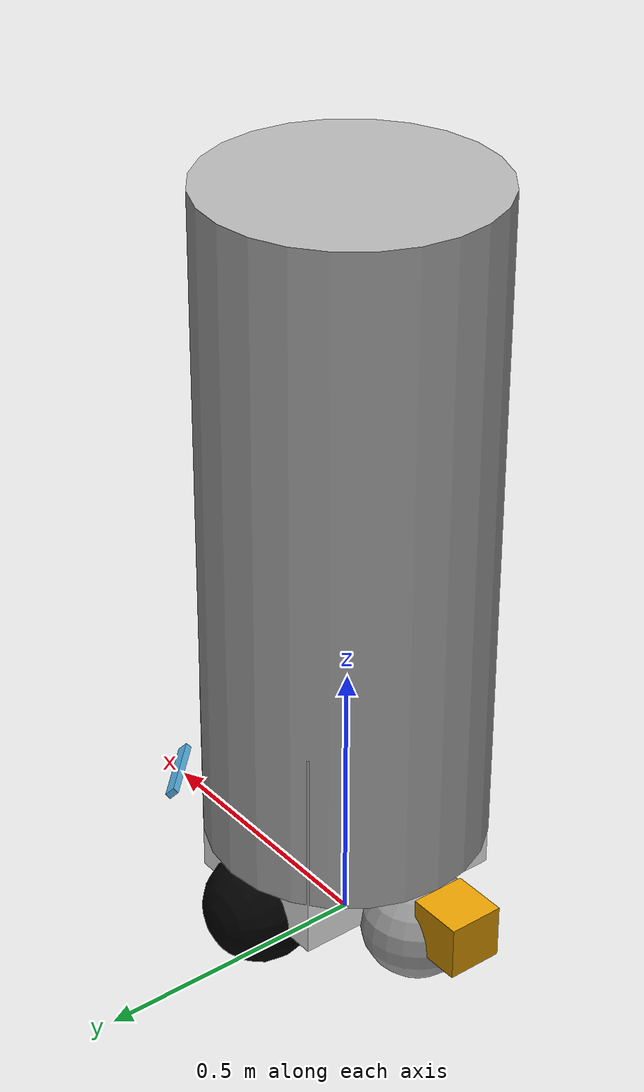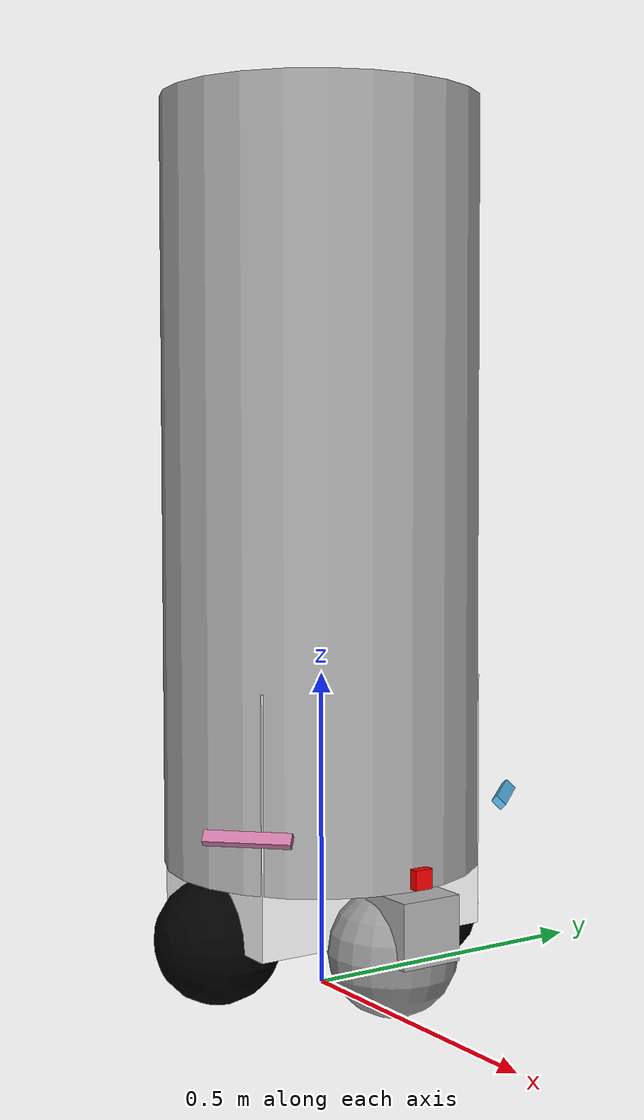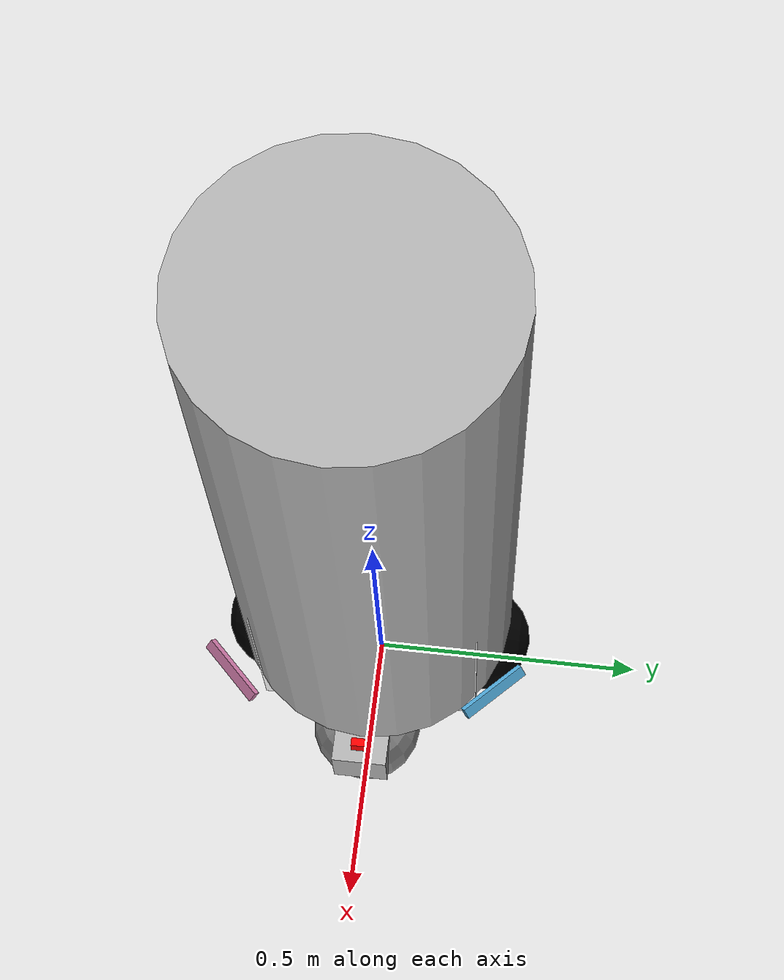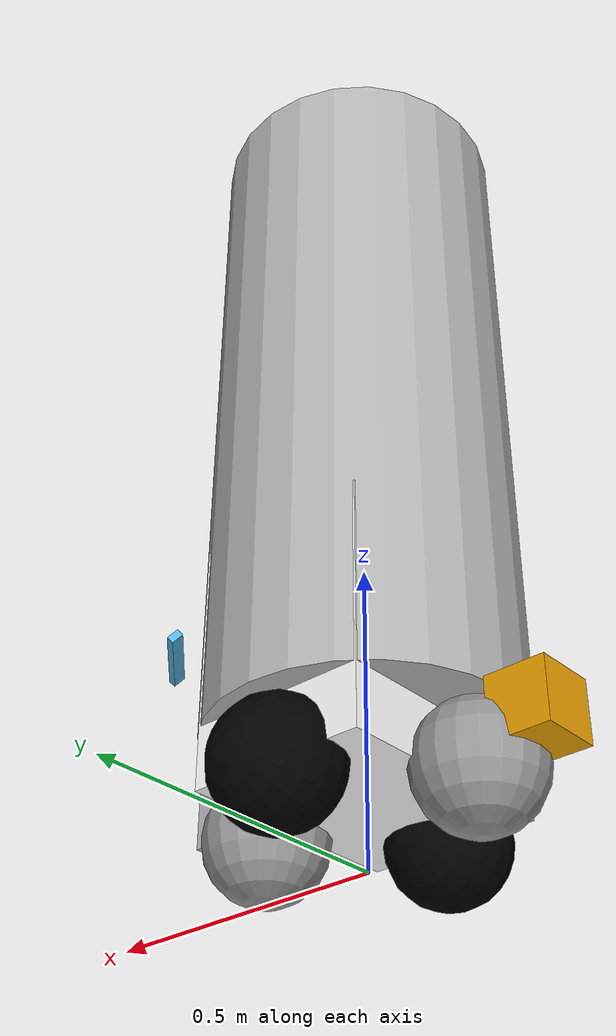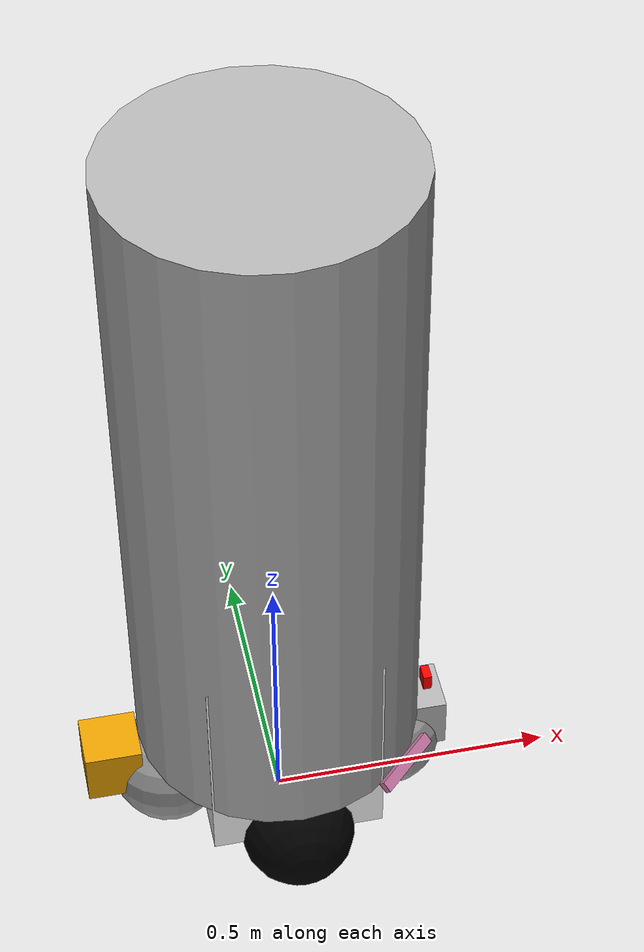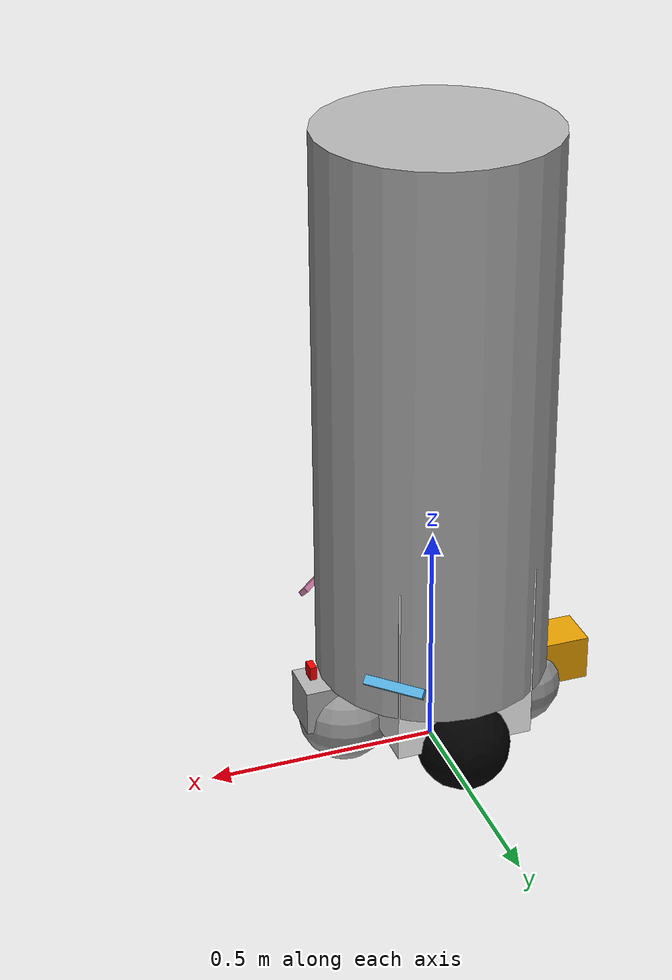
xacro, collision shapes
<?xml version="1.0"?>
<robot name="deliverybot" xmlns:xacro="http://wiki.ros.org/xacro">

    <!-- basic shapes -->
    <xacro:include filename="$(find urdf_basic_shapes)/urdf/basic_shapes.urdf.xacro"/>

    <link name="base_footprint"/>

    <!--cylinder base_link -->

    <link name="base_link">
        <visual>
            <origin xyz="0.0 0.0 -0.10" rpy="0.0 0.0 ${-pi/2}"/>
            <geometry>
                <mesh filename="file://$(find urdf_basic_shapes)/meshes/deliverybot.dae"/>
            </geometry>
            <material name="LightGrey">
                <color rgba="0.7 0.7 0.7 1.0"/>
            </material>
        </visual>
        <collision>
            <origin xyz="0.0 0.0 0.7" rpy="0.0 0.0 0.0"/>
            <geometry>
                <cylinder radius="0.25" length="1.2"/>
            </geometry>
        </collision>
        <xacro:solid_cylinder_inertia m="10" r=".25" h="1.2"/>
    </link>

    <joint name="base_joint" type="fixed">
        <parent link="base_footprint"/>
        <child link="base_link"/>
        <origin xyz="0 0 0.1" rpy="0 0 0"/>
    </joint>

    <!-- cubic screen -->

    <!-- cubic butt -->
    <xacro:cube name="butt" x=".3" y=".4" z=".4" ori="0 0 0" rpy="0 0 0" rgb="White" m="10" friction="${standard_friction}"/>
    <joint name="butt_joint" type="fixed">
        <parent link="base_link"/>
        <child link="butt"/>
        <origin xyz="0 0 0.2" rpy="0 0 0"/>
    </joint>

    <!-- Head  -->

    <!-- diff drive -->
    <!-- the parent link should be the center of wheel axis -->
    <xacro:include filename="$(find urdf_basic_shapes)/urdf/diff_wheel.urdf.xacro"/>
    <xacro:diff_wheel wheeldiam="0.2" h=".05" wheel_separation=".38" parent="base_link" friction="${wheel_friction}" rgb="Black" odom_topic="odom" pub_tf="false"/>

    <!-- caster wheel back -->
    <xacro:ball name="casterwheel_back" r="0.1" ori="0 0 0" rpy="0 0 0" rgb="Grey" m=".1" friction="${sliding_friction}"/>
    <joint name="joint_casterwheel_back" type="fixed">
        <parent link="base_link"/>
        <child link="casterwheel_back"/>
        <origin xyz="-.2 0 -.0" rpy="0 0 0"/>
    </joint>
    <!-- caster wheel front -->
    <xacro:ball name="casterwheel_front" r="0.1" ori="0 0 0" rpy="0 0 0" rgb="Grey" m=".1" friction="${sliding_friction}"/>
    <joint name="joint_casterwheel_front" type="fixed">
        <parent link="base_link"/>
        <child link="casterwheel_front"/>
        <origin xyz=".2 0 -.0" rpy="0 0 0"/>
    </joint>

    <!-- Hokuyo Laser -->
    <xacro:include filename="$(find urdf_basic_shapes)/sensors/hokuyo.urdf.xacro"/>
    <xacro:hokuyo name="scan_front" xyz=".25 0 .05" rpy="0 ${pi} 0" parent="base_link" min_a="${-pi}" max_a="${pi}" topic="front/scan"/>
    <xacro:hokuyo name="scan_back" xyz="-.30 0 .05" rpy="${pi} 0 0" parent="base_link" min_a="${-pi}" max_a="${pi}" topic="back/scan"/>

    <!-- depth_cam -->
    <xacro:include filename="$(find urdf_basic_shapes)/sensors/depth_cam.urdf.xacro"/>
    <xacro:depth_cam name="camL" xyz=".22 0.19 .2" rpy="0 ${-pi/4} ${pi/4}" parent="base_link"/>
    <xacro:depth_cam name="camR" xyz=".22 -.19 .2" rpy="${pi} ${-pi/4} -${pi/4}" parent="base_link"/>
    <!-- usb_cam -->
    <xacro:include filename="$(find urdf_basic_shapes)/sensors/usb_cam.urdf.xacro"/>
    <xacro:usb_cam name="camF" xyz=".28 0 .125" rpy="0 0 0" parent="base_link" rate="6"/>

    <!-- imu -->
    <xacro:include filename="$(find urdf_basic_shapes)/sensors/imu.urdf.xacro"/>
    <xacro:imu name="imu" xyz="0 0 0" rpy="0 0 0" parent="camR_link"/>
    <!-- better not use "/" in "name" can cause some warnings -->

</robot>

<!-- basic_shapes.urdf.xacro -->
<robot name="basic_shapes" xmlns:xacro="http://wiki.ros.org/xacro">
  <!-- basic inertia -->
  <xacro:include filename="$(find urdf_basic_shapes)/urdf/inertia.urdf.xacro"/>
  <!-- basic material -->
  <xacro:include filename="$(find urdf_basic_shapes)/urdf/material.urdf.xacro"/>
  <!-- basic shapes gazebo-->
  <xacro:include filename="$(find urdf_basic_shapes)/urdf/basic_shapes.gazebo.xacro"/>

  <!-- constants -->
  <xacro:property name="update_rate" value="50" />

  <xacro:macro name="cube" params="name x y z ori rpy rgb m friction">
    <link name="${name}">
        <visual>
          <origin xyz="${ori}" rpy="${rpy}"/>
          <geometry>
              <box size="${x} ${y} ${z}"/>
          </geometry>
          <material name="${rgb}"/>
        </visual>
        <collision>
        <origin xyz="${ori}" rpy="${rpy}" />
        <geometry>
            <box size="${x} ${y} ${z}" />
        </geometry>
        </collision>
        <xacro:solid_cuboid_inertia m="${m}" h="${y}" d="${z}" w="${x}"/>
    </link>
    <xacro:gazebo_params name="${name}" rgb="${rgb}" friction="${friction}"/>
  </xacro:macro>

  <xacro:macro name="ball" params="name r ori rpy rgb m friction">
    <link name="${name}">
        <visual>
          <origin xyz="${ori}" rpy="${rpy}"/>
          <geometry>
              <sphere radius="${r}"/>
          </geometry>
          <material name="${rgb}"/>
        </visual>
        <collision>
        <origin xyz="${ori}" rpy="${rpy}" />
        <geometry>
            <sphere radius="${r}" />
        </geometry>
        </collision>
        <xacro:solid_sphere_inertia m="${m}" r="${r}"/>
    </link>
    <xacro:gazebo_params name="${name}" rgb="${rgb}" friction="${friction}"/>
  </xacro:macro>

  <xacro:macro name="cylinder_shape" params="name r h ori rpy rgb m friction">
    <link name="${name}">
        <visual>
          <origin xyz="${ori}" rpy="${rpy}"/>
          <geometry>
              <cylinder radius="${r}" length="${h}"/>
          </geometry>
          <material name="${rgb}"/>
        </visual>
        <collision>
        <origin xyz="${ori}" rpy="${rpy}" />
        <geometry>
            <cylinder radius="${r}" length="${h}" />
        </geometry>
        </collision>
        <xacro:solid_cylinder_inertia m="${m}" r="${r}" h="${h}"/>
    </link>
    <xacro:gazebo_params name="${name}" rgb="${rgb}" friction="${friction}"/>
  </xacro:macro>

  <xacro:macro name="wheel" params="name r h ori rpy rgb m friction">
    <link name="${name}">
        <visual>
          <origin xyz="${ori}" rpy="${rpy}"/>
          <geometry>
              <cylinder radius="${r}" length="${h}"/>
          </geometry>
          <material name="${rgb}"/>
        </visual>
        <collision>
        <origin xyz="${ori}" rpy="${rpy}" />
        <geometry>
            <sphere radius="${r}" />   <!--use shpere here to reduce the point of contract to a infinit small point-->
        </geometry>
        </collision>
        <xacro:solid_cylinder_inertia m="${m}" r="${r}" h="${h}"/>
    </link>
    <xacro:gazebo_params name="${name}" rgb="${rgb}" friction="${friction}"/>
  </xacro:macro>

</robot>

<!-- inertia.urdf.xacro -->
<robot xmlns:xacro="http://wiki.ros.org/xacro">
  <!-- source en.wikipedia.org/wiki/List_of_moments_of_inertia-->

  <!-- TODO Solid sphere of radius r and mass m-->
  <xacro:macro name="solid_sphere_inertia" params="m r">
  <inertial>
      <mass value="${m}" />
    <inertia  ixx="${(2*r*r*m)/5}" ixy = "0" ixz = "0"
              iyy="${(2*r*r*m)/5}" iyz = "0"
              izz="${(2*r*r*m)/5}"
     />
     </inertial>
  </xacro:macro>

  <!-- TODO Hollow sphere of radius r and mass m-->
  <xacro:macro name="hollow_sphere_inertia" params="m r">
  <inertial>
      <mass value="${m}" />
    <inertia  ixx="${(2*r*r*m)/3}" ixy = "0" ixz = "0"
              iyy="${(2*r*r*m)/3}" iyz = "0"
              izz="${(2*r*r*m)/3}"
     />
     </inertial>
  </xacro:macro>

  <!-- TODO Solid ellipsoid of semi-axes a, b, c and mass m-->
  <xacro:macro name="ellipsoid_semi_axes_inertia" params="a b c m r">
  <inertial>
      <mass value="${m}" />
    <inertia  ixx="${(m*(b*b+c*c))/5}" ixy = "0" ixz = "0"
              iyy="${(m*(a*a+c*c))/5}" iyz = "0"
              izz="${(m*(a*a+b*b))/5}"
     />
     </inertial>
  </xacro:macro>

  <!-- TODO Right circular cone with radius r, height h and mass m, about the apex -->
  <xacro:macro name="right_circular_cone_inertia" params="m r h">
  <inertial>
      <mass value="${m}" />
    <inertia  ixx="${((3*m*(h*h))/5)+((3*m*(r*r))/20)}" ixy = "0" ixz = "0"
              iyy="${((3*m*(h*h))/5)+((3*m*(r*r))/20)}" iyz = "0"
              izz="${(3*m*(r*r))/10}"
     />
     </inertial>
  </xacro:macro>

  <!-- TODO Solid cuboid of width w, height h, depth d, and mass m -->
  <!-- yes, axis in solid_cuboid_inertia are changed, w relates to X axis, d to Z axis, and h to Y axis -->
  <!-- Keep this comment -->
  <xacro:macro name="solid_cuboid_inertia" params="m h d w">
    <inertial>
      <mass value="${m}" />
        <inertia  ixx="${(m*(h*h+d*d))/12}" ixy = "0" ixz = "0"
                iyy="${(m*(w*w+d*d))/12}" iyz = "0"
                izz="${(m*(w*w+h*h))/12}"
        />
    </inertial>
  </xacro:macro>

  <!-- TODO Solid cylinder of radius r, height h and mass m -->
  <xacro:macro name="solid_cylinder_inertia" params="m r h">
  <inertial>
      <mass value="${m}" />
    <inertia  ixx="${m*(3*r*r+h*h)/12}" ixy = "0" ixz = "0"
              iyy="${m*(3*r*r+h*h)/12}" iyz = "0"
              izz="${m*r*r/2}"
     />
     </inertial>
  </xacro:macro>

    <!-- TODO Thick-walled cylindrical tube with open ends, of inner radius r1, outer radius r2, length h and mass m -->
    <xacro:macro name="thick_walled_cylinder_inertia" params="m r1 r2 h">
    <inertial>
      <mass value="${m}" />
    <inertia  ixx="${m*((3*(r1*r1+r2*r2))+(h*h))/12}" ixy = "0" ixz = "0"
              iyy="${m*((3*(r1*r1+r2*r2))+(h*h))/12}" iyz = "0"
              izz="${m*(r1*r1+r2*r2)/2}"
     />
     </inertial>
  </xacro:macro>

</robot>

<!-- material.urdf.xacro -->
<robot xmlns:xacro="http://wiki.ros.org/xacro">

  <material name="Red">
    <color rgba="1 0 0 1"/>
  </material>
  <material name="Green">
    <color rgba="0 1 0 1"/>
  </material>
  <material name="Blue">
    <color rgba="0 0 0.8 1"/>
  </material>
  <material name="Black">
    <color rgba="0 0 0 1"/>
  </material>
  <material name="White">
    <color rgba="1 1 1 1"/>
  </material>
  <material name="Gray">
    <color rgba="0.8 0.8 0.8 1"/>
  </material>
  <material name="Yellow">
    <color rgba="1 1 0 1"/>
  </material>
  <material name="Orange">
    <color rgba="1 0.5 0 1"/>
  </material>
  <material name="Brown">
    <color rgba="0.6 0.4 0.2 1"/>
  </material>
  <material name="Purple">
    <color rgba="0.5 0 0.5 1"/>
  </material>
  <material name="Cyan">
    <color rgba="0 1 1 1"/>
  </material>

</robot>

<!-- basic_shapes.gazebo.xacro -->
<robot name="basic_shapes"
  xmlns:xacro="http://www.ros.org/wiki/xacro">
  <xacro:arg name="laser_visual" default="true"/>

  <xacro:property name="update_rate" value="10" />

  <xacro:property name="standard_friction" value="0.2" />
  <xacro:property name="wheel_friction" value="10000.0" />
  <xacro:property name="sliding_friction" value="0.1" />

  <xacro:macro name="gazebo_params" params="name rgb friction">
    <gazebo reference="${name}">
      <material>Gazebo/${rgb}</material>
      <mu1>${friction}</mu1>
      <mu2>${friction}</mu2>
      <kp value="10000000.0" />
      <kd value="1.0" />
      <minDepth>0.001</minDepth>
      <maxVel>0.1</maxVel>
      <fdir1>1 0 0</fdir1>
    </gazebo>
  </xacro:macro>

  <!-- Gazebo plugin for ROS Control -->

</robot>

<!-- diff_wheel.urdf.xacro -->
<robot name="diff_wheel" xmlns:xacro="http://wiki.ros.org/xacro">

    <!-- differential drive macro -->
    <xacro:macro name="diff_wheel" params=" wheeldiam h wheel_separation parent friction rgb odom_topic:=odom pub_tf:=true">
        <xacro:wheel name="left_wheel" r="${wheeldiam/2}" h="${h}" ori="0 0 0" rpy="0 0 0" rgb="${rgb}" m="0.1" friction="${friction}"/>
        <joint name="left_wheel_joint" type="continuous">
            <axis xyz="0 0 1" rpy="0 0 0" />
            <parent link="${parent}"/>
            <child link="left_wheel"/>
            <origin xyz="0 ${wheel_separation/2} 0" rpy="${-pi/2} 0 0"/>
        </joint>

        <xacro:wheel name="right_wheel" r="${wheeldiam/2}" h="${h}" ori="0 0 0" rpy="0 0 0" rgb="${rgb}" m="0.1" friction="${friction}"/>
        <joint name="right_wheel_joint" type="continuous">
            <axis xyz="0 0 1" rpy="0 0 0" />
            <parent link="${parent}"/>
            <child link="right_wheel"/>
            <origin xyz="0 ${-wheel_separation/2} 0" rpy="${-pi/2} 0 0"/>
        </joint>

        <gazebo>
        <plugin name="diff_drive_controller" filename="libgazebo_ros_diff_drive.so">

            <!-- Plugin update rate in Hz -->
            <left_joint>left_wheel_joint</left_joint>
            <right_joint>right_wheel_joint</right_joint>

            <!-- kinematics -->
            <wheel_separation>${wheel_separation}</wheel_separation>
            <wheel_diameter>${wheeldiam}</wheel_diameter>

            <!-- limits -->
            <max_wheel_acceleration>1.0</max_wheel_acceleration>
            <max_wheel_torque>20</max_wheel_torque>

            <!-- topics and frames -->
            <command_topic>cmd_vel</command_topic>
            <odometry_topic>${odom_topic}</odometry_topic>
            <odometry_frame>odom</odometry_frame>
            <robot_base_frame>base_link</robot_base_frame>
            <!-- Odometry source, 0 for ENCODER, 1 for WORLD, defaults to WORLD -->

            <!-- output -->
            <publish_odom>true</publish_odom>
            <publish_odom_tf>${pub_tf}</publish_odom_tf>
            <publish_wheel_tf>false</publish_wheel_tf>
        </plugin>

        <plugin name="turtlebot3_joint_state" filename="libgazebo_ros_joint_state_publisher.so">
            <ros>
                <remapping>~/out:=joint_states</remapping>
            </ros>
            <update_rate>30</update_rate>
            <joint_name>left_wheel_joint</joint_name>
            <joint_name>right_wheel_joint</joint_name>
        </plugin>

        </gazebo>

    </xacro:macro>

</robot>

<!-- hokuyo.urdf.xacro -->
<robot name="hokuyo"
    xmlns:xacro="http://wiki.ros.org/xacro">
    <xacro:macro name="hokuyo" params="name parent xyz rpy min_a max_a topic=scan">
        <link name="${name}">
            <collision>
                <origin xyz="0 0 0" rpy="0 0 0"/>
                <geometry>
                    <box size="0.1 0.1 0.1"/>
                </geometry>
            </collision>

            <visual>
                <origin xyz="0 0 0" rpy="0 0 0"/>
                <geometry>
                    <mesh filename="package://urdf_basic_shapes/meshes/hokuyo.dae"/>
                </geometry>
            </visual>

            <inertial>
                <mass value="1e-5" />
                <origin xyz="0 0 0" rpy="0 0 0"/>
                <inertia ixx="1e-6" ixy="0" ixz="0" iyy="1e-6" iyz="0" izz="1e-6" />
            </inertial>
        </link>

        <joint name="${name}_joint" type="fixed">
            <axis xyz="0 1 0" />
            <origin xyz="${xyz}" rpy="${rpy}"/>
            <parent link="${parent}"/>
            <child link="${name}"/>
        </joint>

        <!-- hokuyo -->
        <gazebo reference="${name}">
            <sensor type="ray" name="${name}_hokuyo_sensor">
                <pose>0 0 0 0 0 0</pose>
                <visualize>true</visualize>
                <update_rate>10</update_rate>
                <ray>
                    <scan>
                        <horizontal>
                            <samples>720</samples>
                            <resolution>1</resolution>
                            <min_angle>${min_a}</min_angle>
                            <max_angle>${max_a}</max_angle>
                        </horizontal>
                    </scan>
                    <range>
                        <min>0.10</min>
                        <max>30.0</max>
                        <resolution>0.01</resolution>
                    </range>
                    <noise>
                        <type>gaussian</type>
                        <mean>0.0</mean>
                        <stddev>0.01</stddev>
                    </noise>
                </ray>
                <plugin name="gazebo_ros_${name}_controller" filename="libgazebo_ros_laser.so">
                    <topicName>${topic}</topicName>
                    <frameName>${name}</frameName>
                </plugin>
            </sensor>
        </gazebo>

    </xacro:macro>
</robot>

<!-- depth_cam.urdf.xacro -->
<robot name="depth_cam"
  xmlns:xacro="http://wiki.ros.org/xacro">
  <xacro:macro name="depth_cam" params="name parent xyz rpy">

    <xacro:property name="r200_cam_color_px" value="0.005"/>
    <xacro:property name="r200_cam_color_py" value="0.018"/>
    <xacro:property name="r200_cam_color_pz" value="0.013"/>
    <xacro:property name="r200_cam_depth_offset" value="0.01"/>
    <xacro:arg name="camera_visual" default="false"/>

    <joint name="base_${name}_joint" type="fixed">
      <origin xyz="${xyz}" rpy="${rpy}" />
      <parent link="${parent}"/>
      <child link="${name}_link" />
    </joint>
    <link name="${name}_link">
      <visual>
        <origin xyz="0 0 0" rpy="1.57 0 1.57"/>
        <geometry>
          <mesh filename="package://urdf_basic_shapes/meshes/intel_d435.dae" />
        </geometry>
      </visual>
      <collision>
        <origin xyz="0.003 0.065 0.007" rpy="0 0 0"/>
        <geometry>
          <box size="0.012 0.132 0.020"/>
        </geometry>
      </collision>
    </link>

    <joint name="${name}_color_joint" type="fixed">
      <origin xyz="${r200_cam_color_px} ${r200_cam_color_py} ${r200_cam_color_pz}" rpy="0 0 0"/>
      <parent link="${name}_link"/>
      <child link="${name}_color_frame"/>
    </joint>
    <link name="${name}_color_frame"/>

    <joint name="${name}_color_optical_joint" type="fixed">
      <origin xyz="0 0 0" rpy="-1.57 0 -1.57"/>
      <parent link="${name}_color_frame"/>
      <child link="${name}_color_optical_frame"/>
    </joint>
    <link name="${name}_color_optical_frame"/>

    <joint name="${name}_depth_joint" type="fixed">
      <origin xyz="${r200_cam_color_px} ${r200_cam_color_py + r200_cam_depth_offset} ${r200_cam_color_pz}" rpy="0 0 0"/>

      <parent link="${name}_link"/>
      <child link="${name}_depth_frame"/>
    </joint>
    <link name="${name}_depth_frame"/>

    <joint name="${name}_depth_optical_joint" type="fixed">
      <origin xyz="0 0 0" rpy="-1.57 0 -1.57"/>
      <parent link="${name}_depth_frame"/>
      <child link="${name}_depth_optical_frame"/>
    </joint>
    <link name="${name}_depth_optical_frame"/>

    <gazebo reference="${name}_color_frame">
      <sensor type="depth" name="realsense_R200">

        <always_on>true</always_on>
        <visualize>$(arg camera_visual)</visualize>
        <camera>
          <horizontal_fov>1.3439</horizontal_fov>
          <image>
            <width>1920</width>
            <height>1080</height>
            <format>R8G8B8</format>
          </image>
          <depth_camera></depth_camera>
          <clip>
            <near>0.03</near>
            <far>100</far>
          </clip>
        </camera>
        <plugin name="${name}_controller" filename="libgazebo_ros_openni_kinect.so">
          <baseline>0.2</baseline>
          <alwaysOn>true</alwaysOn>
          <updateRate>30.0</updateRate>
          <cameraName>${name}</cameraName>
          <frameName>${name}_depth_optical_frame</frameName>
          <imageTopicName>color/image_raw</imageTopicName>
          <depthImageTopicName>depth/image_raw</depthImageTopicName>
          <pointCloudTopicName>depth/color/points</pointCloudTopicName>
          <cameraInfoTopicName>color/camera_info</cameraInfoTopicName>
          <depthImageCameraInfoTopicName>depth/camera_info</depthImageCameraInfoTopicName>
          <pointCloudCutoff>0.4</pointCloudCutoff>
          <hackBaseline>0.07</hackBaseline>
          <distortionK1>0.0</distortionK1>
          <distortionK2>0.0</distortionK2>
          <distortionK3>0.0</distortionK3>
          <distortionT1>0.0</distortionT1>
          <distortionT2>0.0</distortionT2>

          <CxPrime>0.0</CxPrime>
          <Cx>0.0</Cx>
          <Cy>0.0</Cy>
          <focalLength>0</focalLength>
          <hackBaseline>0</hackBaseline>
        </plugin>
      </sensor>
    </gazebo>

  </xacro:macro>
</robot>

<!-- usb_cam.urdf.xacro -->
<robot name="usb_cam" xmlns:xacro="http://wiki.ros.org/xacro">
    <xacro:macro name="usb_cam" params="name parent xyz rpy rate:=24">

    <xacro:cube name="${name}" x="0.015" y="0.03" z="0.03" ori="-.007 0 0" rpy="0 0 0" rgb="Red" m="0.02" friction="${standard_friction}"/>

    <joint name="${name}_joint" type="fixed">
      <parent link="${parent}"/>
      <child link="${name}"/>
      <origin xyz="${xyz}" rpy="${rpy}"/>
    </joint>

    <link name="${name}_optical_frame"/>
    <joint name="${name}_optical_joint" type="fixed">
      <parent link="${name}"/>
      <child link="${name}_optical_frame"/>
      <origin xyz="0.0 0.0 0.0" rpy="${-pi/2} 0.0 ${-pi/2}"/>
    </joint>

    <gazebo reference="${name}">
      <sensor name="${name}" type="camera">
        <visualize>true</visualize>
        <update_rate>${rate}</update_rate>
        <camera name="${name}">
          <horizontal_fov>1.3962634</horizontal_fov>
          <image>
            <width>800</width>
            <height>800</height>
            <format>R8G8B8</format>
          </image>
          <clip>
            <near>0.02</near>
            <far>300</far>
          </clip>
          <noise>
          <type>gaussian</type>
          <!-- Noise is sampled independently per pixel on each frame.
               That pixel's noise value is added to each of its color
               channels, which at that point lie in the range [0,1]. -->
          <mean>0.0</mean>
          <stddev>0.007</stddev>
        </noise>
        </camera>
        <plugin name="${name}_controller" filename="libgazebo_ros_camera.so">
          <baseline>0.2</baseline>
          <alwaysOn>true</alwaysOn>
          <updateRate>0.0</updateRate>
          <frame_name>${name}_optical_frame</frame_name>
          <distortionK1>0</distortionK1>
          <distortionK2>0</distortionK2>
          <distortionK3>0</distortionK3>
          <distortionT1>0</distortionT1>
          <distortionT2>0</distortionT2>
        </plugin>
      </sensor>
    </gazebo>

  </xacro:macro>
</robot>

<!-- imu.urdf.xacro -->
<robot name="imu" xmlns:xacro="http://wiki.ros.org/xacro">
    <xacro:macro name="imu" params="name parent xyz rpy">

        <link name="${name}" />

        <joint name="${name}_joint" type="fixed">
            <axis xyz="0 0 0" />
            <origin xyz="${xyz}" rpy="${rpy}" />
            <parent link="${parent}" />
            <child link="${name}" />
        </joint>

        <!-- imu -->
        <gazebo reference="${name}">
            <gravity>true</gravity>
            <sensor name="${name}" type="imu">
                <always_on>true</always_on>
                <update_rate>200</update_rate>
                <visualize>true</visualize>
                <topic>${name}</topic>
                <plugin filename="libgazebo_ros_imu_sensor.so" name="imu_plugin">
                    <topicName>${name}</topicName>
                    <remapping>~/out:=${name}</remapping>
                    <bodyName>${name}</bodyName>
                    <updateRateHZ>10.0</updateRateHZ>
                    <gaussianNoise>0.0</gaussianNoise>
                    <xyzOffset>0 0 0</xyzOffset>
                    <rpyOffset>0 0 0</rpyOffset>
                    <frame_name>${name}</frame_name>
                    <initialOrientationAsReference>false</initialOrientationAsReference>
                </plugin>
                <pose>0 0 0 0 0 0</pose>
            </sensor>
        </gazebo>

    </xacro:macro>
</robot>
